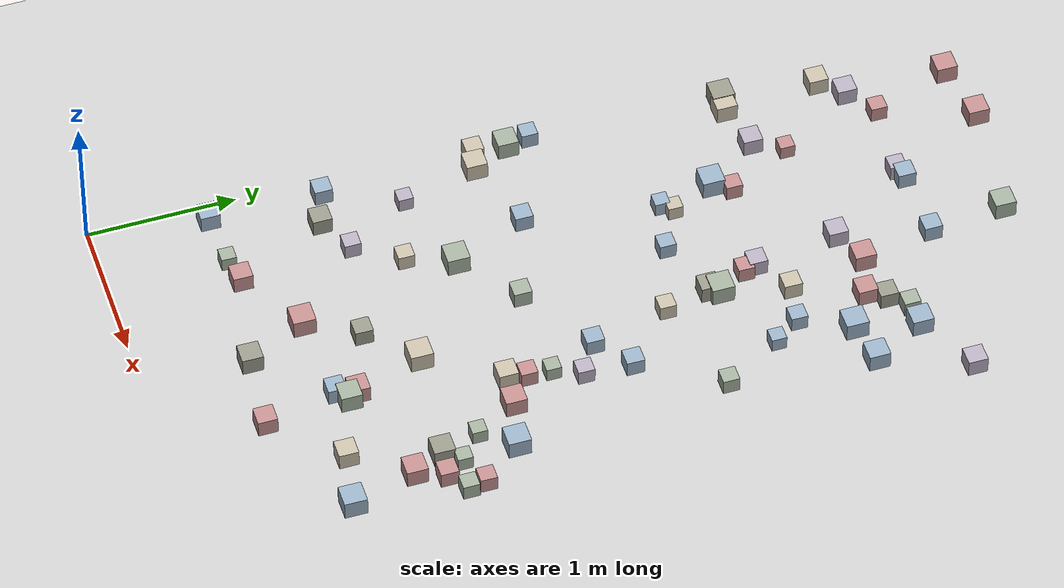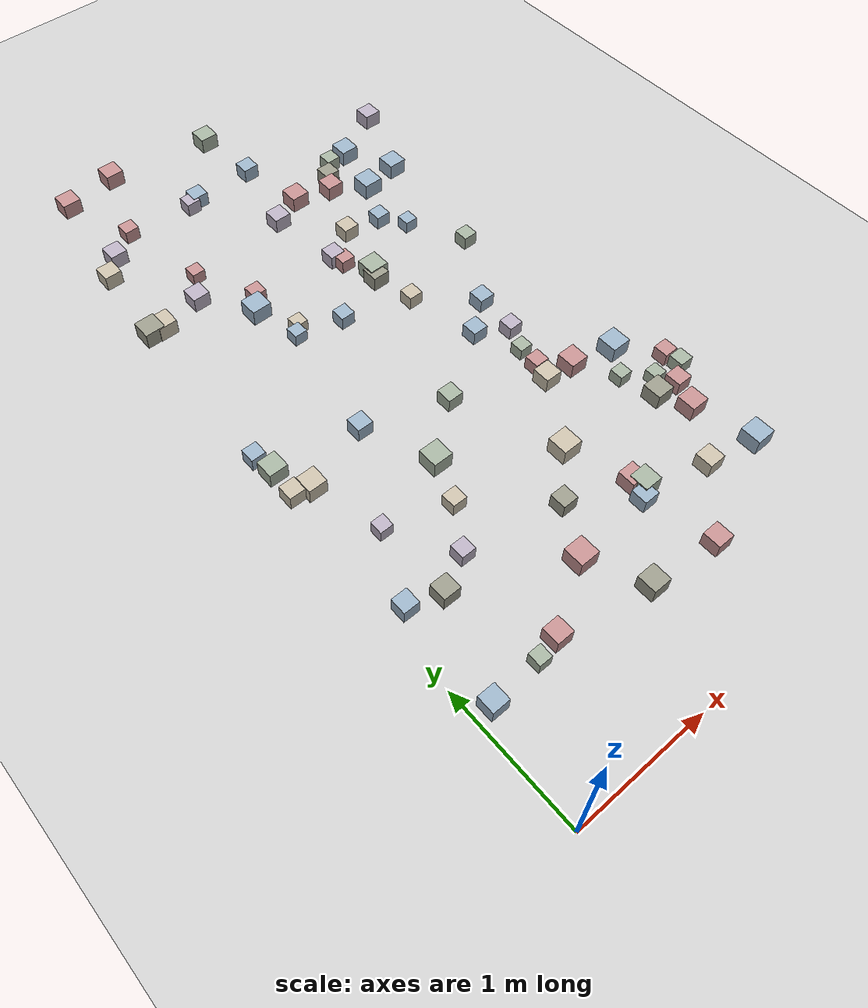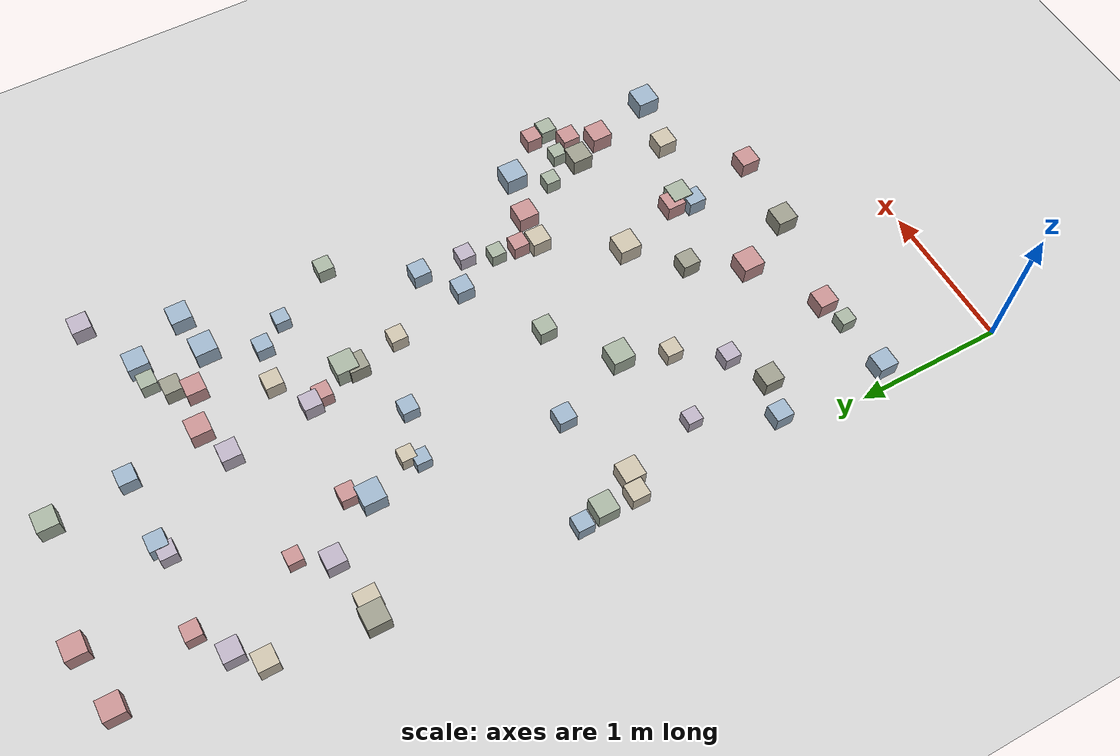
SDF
<sdf version="1.6">
 <world name="small_maze_world">
  <include><uri>model://ground_plane</uri></include>
  <include><uri>model://sun</uri></include>
  <model name="box_2">
   <static>false</static>
   <pose>2.55 1.44 0.05 0 0 0</pose>
   <link name="link">
    <inertial>
     <mass>0.2</mass>
     <inertia><ixx>0.001</ixx><iyy>0.001</iyy><izz>0.001</izz><ixy>0</ixy><ixz>0</ixz><iyz>0</iyz></inertia>
    </inertial>
    <collision name="collision"><geometry><box><size>0.14 0.14 0.14</size></box></geometry></collision>
    <visual name="visual">
     <geometry><box><size>0.14 0.14 0.14</size></box></geometry>
     <material><ambient>0.76 0.56 0.56 1</ambient><diffuse>0.76 0.56 0.56 1</diffuse></material>
    </visual>
   </link>
  </model>
  <model name="box_5">
   <static>false</static>
   <pose>1.49 4.6 0.05 0 0 0</pose>
   <link name="link">
    <inertial>
     <mass>0.2</mass>
     <inertia><ixx>0.001</ixx><iyy>0.001</iyy><izz>0.001</izz><ixy>0</ixy><ixz>0</ixz><iyz>0</iyz></inertia>
    </inertial>
    <collision name="collision"><geometry><box><size>0.13 0.13 0.13</size></box></geometry></collision>
    <visual name="visual">
     <geometry><box><size>0.13 0.13 0.13</size></box></geometry>
     <material><ambient>0.72 0.68 0.75 1</ambient><diffuse>0.72 0.68 0.75 1</diffuse></material>
    </visual>
   </link>
  </model>
  <model name="box_9">
   <static>false</static>
   <pose>0.2 4.91 0.05 0 0 0</pose>
   <link name="link">
    <inertial>
     <mass>0.2</mass>
     <inertia><ixx>0.001</ixx><iyy>0.001</iyy><izz>0.001</izz><ixy>0</ixy><ixz>0</ixz><iyz>0</iyz></inertia>
    </inertial>
    <collision name="collision"><geometry><box><size>0.13 0.13 0.13</size></box></geometry></collision>
    <visual name="visual">
     <geometry><box><size>0.13 0.13 0.13</size></box></geometry>
     <material><ambient>0.78 0.74 0.66 1</ambient><diffuse>0.78 0.74 0.66 1</diffuse></material>
    </visual>
   </link>
  </model>
  <model name="box_22">
   <static>false</static>
   <pose>2.01 2.35 0.05 0 0 0</pose>
   <link name="link">
    <inertial>
     <mass>0.2</mass>
     <inertia><ixx>0.001</ixx><iyy>0.001</iyy><izz>0.001</izz><ixy>0</ixy><ixz>0</ixz><iyz>0</iyz></inertia>
    </inertial>
    <collision name="collision"><geometry><box><size>0.11 0.11 0.11</size></box></geometry></collision>
    <visual name="visual">
     <geometry><box><size>0.11 0.11 0.11</size></box></geometry>
     <material><ambient>0.76 0.56 0.56 1</ambient><diffuse>0.76 0.56 0.56 1</diffuse></material>
    </visual>
   </link>
  </model>
  <model name="box_28">
   <static>false</static>
   <pose>1.07 5.16 0.05 0 0 0</pose>
   <link name="link">
    <inertial>
     <mass>0.2</mass>
     <inertia><ixx>0.001</ixx><iyy>0.001</iyy><izz>0.001</izz><ixy>0</ixy><ixz>0</ixz><iyz>0</iyz></inertia>
    </inertial>
    <collision name="collision"><geometry><box><size>0.11 0.11 0.11</size></box></geometry></collision>
    <visual name="visual">
     <geometry><box><size>0.11 0.11 0.11</size></box></geometry>
     <material><ambient>0.72 0.68 0.75 1</ambient><diffuse>0.72 0.68 0.75 1</diffuse></material>
    </visual>
   </link>
  </model>
  <model name="box_30">
   <static>false</static>
   <pose>0.14 4.27 0.05 0 0 0</pose>
   <link name="link">
    <inertial>
     <mass>0.2</mass>
     <inertia><ixx>0.001</ixx><iyy>0.001</iyy><izz>0.001</izz><ixy>0</ixy><ixz>0</ixz><iyz>0</iyz></inertia>
    </inertial>
    <collision name="collision"><geometry><box><size>0.15 0.15 0.15</size></box></geometry></collision>
    <visual name="visual">
     <geometry><box><size>0.15 0.15 0.15</size></box></geometry>
     <material><ambient>0.6 0.6 0.54 1</ambient><diffuse>0.6 0.6 0.54 1</diffuse></material>
    </visual>
   </link>
  </model>
  <model name="box_32">
   <static>false</static>
   <pose>0.91 3.6 0.05 0 0 0</pose>
   <link name="link">
    <inertial>
     <mass>0.2</mass>
     <inertia><ixx>0.001</ixx><iyy>0.001</iyy><izz>0.001</izz><ixy>0</ixy><ixz>0</ixz><iyz>0</iyz></inertia>
    </inertial>
    <collision name="collision"><geometry><box><size>0.1 0.1 0.1</size></box></geometry></collision>
    <visual name="visual">
     <geometry><box><size>0.1 0.1 0.1</size></box></geometry>
     <material><ambient>0.6 0.69 0.77 1</ambient><diffuse>0.6 0.69 0.77 1</diffuse></material>
    </visual>
   </link>
  </model>
  <model name="box_35">
   <static>false</static>
   <pose>2.37 1.91 0.05 0 0 0</pose>
   <link name="link">
    <inertial>
     <mass>0.2</mass>
     <inertia><ixx>0.001</ixx><iyy>0.001</iyy><izz>0.001</izz><ixy>0</ixy><ixz>0</ixz><iyz>0</iyz></inertia>
    </inertial>
    <collision name="collision"><geometry><box><size>0.1 0.1 0.1</size></box></geometry></collision>
    <visual name="visual">
     <geometry><box><size>0.1 0.1 0.1</size></box></geometry>
     <material><ambient>0.64 0.69 0.62 1</ambient><diffuse>0.64 0.69 0.62 1</diffuse></material>
    </visual>
   </link>
  </model>
  <model name="box_46">
   <static>false</static>
   <pose>0.77 5.82 0.05 0 0 0</pose>
   <link name="link">
    <inertial>
     <mass>0.2</mass>
     <inertia><ixx>0.001</ixx><iyy>0.001</iyy><izz>0.001</izz><ixy>0</ixy><ixz>0</ixz><iyz>0</iyz></inertia>
    </inertial>
    <collision name="collision"><geometry><box><size>0.14 0.14 0.14</size></box></geometry></collision>
    <visual name="visual">
     <geometry><box><size>0.14 0.14 0.14</size></box></geometry>
     <material><ambient>0.76 0.56 0.56 1</ambient><diffuse>0.76 0.56 0.56 1</diffuse></material>
    </visual>
   </link>
  </model>
  <model name="box_53">
   <static>false</static>
   <pose>1.57 4.03 0.05 0 0 0</pose>
   <link name="link">
    <inertial>
     <mass>0.2</mass>
     <inertia><ixx>0.001</ixx><iyy>0.001</iyy><izz>0.001</izz><ixy>0</ixy><ixz>0</ixz><iyz>0</iyz></inertia>
    </inertial>
    <collision name="collision"><geometry><box><size>0.12 0.12 0.12</size></box></geometry></collision>
    <visual name="visual">
     <geometry><box><size>0.12 0.12 0.12</size></box></geometry>
     <material><ambient>0.72 0.68 0.75 1</ambient><diffuse>0.72 0.68 0.75 1</diffuse></material>
    </visual>
   </link>
  </model>
  <model name="box_66">
   <static>false</static>
   <pose>0.37 2.03 0.05 0 0 0</pose>
   <link name="link">
    <inertial>
     <mass>0.2</mass>
     <inertia><ixx>0.001</ixx><iyy>0.001</iyy><izz>0.001</izz><ixy>0</ixy><ixz>0</ixz><iyz>0</iyz></inertia>
    </inertial>
    <collision name="collision"><geometry><box><size>0.1 0.1 0.1</size></box></geometry></collision>
    <visual name="visual">
     <geometry><box><size>0.1 0.1 0.1</size></box></geometry>
     <material><ambient>0.72 0.68 0.75 1</ambient><diffuse>0.72 0.68 0.75 1</diffuse></material>
    </visual>
   </link>
  </model>
  <model name="box_67">
   <static>false</static>
   <pose>2.19 4.86 0.05 0 0 0</pose>
   <link name="link">
    <inertial>
     <mass>0.2</mass>
     <inertia><ixx>0.001</ixx><iyy>0.001</iyy><izz>0.001</izz><ixy>0</ixy><ixz>0</ixz><iyz>0</iyz></inertia>
    </inertial>
    <collision name="collision"><geometry><box><size>0.11 0.11 0.11</size></box></geometry></collision>
    <visual name="visual">
     <geometry><box><size>0.11 0.11 0.11</size></box></geometry>
     <material><ambient>0.64 0.69 0.62 1</ambient><diffuse>0.64 0.69 0.62 1</diffuse></material>
    </visual>
   </link>
  </model>
  <model name="box_71">
   <static>false</static>
   <pose>2.01 4.62 0.05 0 0 0</pose>
   <link name="link">
    <inertial>
     <mass>0.2</mass>
     <inertia><ixx>0.001</ixx><iyy>0.001</iyy><izz>0.001</izz><ixy>0</ixy><ixz>0</ixz><iyz>0</iyz></inertia>
    </inertial>
    <collision name="collision"><geometry><box><size>0.13 0.13 0.13</size></box></geometry></collision>
    <visual name="visual">
     <geometry><box><size>0.13 0.13 0.13</size></box></geometry>
     <material><ambient>0.76 0.56 0.56 1</ambient><diffuse>0.76 0.56 0.56 1</diffuse></material>
    </visual>
   </link>
  </model>
  <model name="box_78">
   <static>false</static>
   <pose>1.82 4.18 0.05 0 0 0</pose>
   <link name="link">
    <inertial>
     <mass>0.2</mass>
     <inertia><ixx>0.001</ixx><iyy>0.001</iyy><izz>0.001</izz><ixy>0</ixy><ixz>0</ixz><iyz>0</iyz></inertia>
    </inertial>
    <collision name="collision"><geometry><box><size>0.12 0.12 0.12</size></box></geometry></collision>
    <visual name="visual">
     <geometry><box><size>0.12 0.12 0.12</size></box></geometry>
     <material><ambient>0.78 0.74 0.66 1</ambient><diffuse>0.78 0.74 0.66 1</diffuse></material>
    </visual>
   </link>
  </model>
  <model name="box_81">
   <static>false</static>
   <pose>2.25 4.46 0.05 0 0 0</pose>
   <link name="link">
    <inertial>
     <mass>0.2</mass>
     <inertia><ixx>0.001</ixx><iyy>0.001</iyy><izz>0.001</izz><ixy>0</ixy><ixz>0</ixz><iyz>0</iyz></inertia>
    </inertial>
    <collision name="collision"><geometry><box><size>0.15 0.15 0.15</size></box></geometry></collision>
    <visual name="visual">
     <geometry><box><size>0.15 0.15 0.15</size></box></geometry>
     <material><ambient>0.6 0.69 0.77 1</ambient><diffuse>0.6 0.69 0.77 1</diffuse></material>
    </visual>
   </link>
  </model>
  <model name="box_82">
   <static>false</static>
   <pose>1.88 0.66 0.05 0 0 0</pose>
   <link name="link">
    <inertial>
     <mass>0.2</mass>
     <inertia><ixx>0.001</ixx><iyy>0.001</iyy><izz>0.001</izz><ixy>0</ixy><ixz>0</ixz><iyz>0</iyz></inertia>
    </inertial>
    <collision name="collision"><geometry><box><size>0.13 0.13 0.13</size></box></geometry></collision>
    <visual name="visual">
     <geometry><box><size>0.13 0.13 0.13</size></box></geometry>
     <material><ambient>0.76 0.56 0.56 1</ambient><diffuse>0.76 0.56 0.56 1</diffuse></material>
    </visual>
   </link>
  </model>
  <model name="box_84">
   <static>false</static>
   <pose>1.36 2.51 0.05 0 0 0</pose>
   <link name="link">
    <inertial>
     <mass>0.2</mass>
     <inertia><ixx>0.001</ixx><iyy>0.001</iyy><izz>0.001</izz><ixy>0</ixy><ixz>0</ixz><iyz>0</iyz></inertia>
    </inertial>
    <collision name="collision"><geometry><box><size>0.12 0.12 0.12</size></box></geometry></collision>
    <visual name="visual">
     <geometry><box><size>0.12 0.12 0.12</size></box></geometry>
     <material><ambient>0.64 0.69 0.62 1</ambient><diffuse>0.64 0.69 0.62 1</diffuse></material>
    </visual>
   </link>
  </model>
  <model name="box_96">
   <static>false</static>
   <pose>0.97 3.67 0.05 0 0 0</pose>
   <link name="link">
    <inertial>
     <mass>0.2</mass>
     <inertia><ixx>0.001</ixx><iyy>0.001</iyy><izz>0.001</izz><ixy>0</ixy><ixz>0</ixz><iyz>0</iyz></inertia>
    </inertial>
    <collision name="collision"><geometry><box><size>0.1 0.1 0.1</size></box></geometry></collision>
    <visual name="visual">
     <geometry><box><size>0.1 0.1 0.1</size></box></geometry>
     <material><ambient>0.78 0.74 0.66 1</ambient><diffuse>0.78 0.74 0.66 1</diffuse></material>
    </visual>
   </link>
  </model>
  <model name="box_109">
   <static>false</static>
   <pose>0.64 1.59 0.05 0 0 0</pose>
   <link name="link">
    <inertial>
     <mass>0.2</mass>
     <inertia><ixx>0.001</ixx><iyy>0.001</iyy><izz>0.001</izz><ixy>0</ixy><ixz>0</ixz><iyz>0</iyz></inertia>
    </inertial>
    <collision name="collision"><geometry><box><size>0.11 0.11 0.11</size></box></geometry></collision>
    <visual name="visual">
     <geometry><box><size>0.11 0.11 0.11</size></box></geometry>
     <material><ambient>0.72 0.68 0.75 1</ambient><diffuse>0.72 0.68 0.75 1</diffuse></material>
    </visual>
   </link>
  </model>
  <model name="box_137">
   <static>false</static>
   <pose>1.58 5.71 0.05 0 0 0</pose>
   <link name="link">
    <inertial>
     <mass>0.2</mass>
     <inertia><ixx>0.001</ixx><iyy>0.001</iyy><izz>0.001</izz><ixy>0</ixy><ixz>0</ixz><iyz>0</iyz></inertia>
    </inertial>
    <collision name="collision"><geometry><box><size>0.14 0.14 0.14</size></box></geometry></collision>
    <visual name="visual">
     <geometry><box><size>0.14 0.14 0.14</size></box></geometry>
     <material><ambient>0.64 0.69 0.62 1</ambient><diffuse>0.64 0.69 0.62 1</diffuse></material>
    </visual>
   </link>
  </model>
  <model name="box_141">
   <static>false</static>
   <pose>2.12 3.02 0.05 0 0 0</pose>
   <link name="link">
    <inertial>
     <mass>0.2</mass>
     <inertia><ixx>0.001</ixx><iyy>0.001</iyy><izz>0.001</izz><ixy>0</ixy><ixz>0</ixz><iyz>0</iyz></inertia>
    </inertial>
    <collision name="collision"><geometry><box><size>0.12 0.12 0.12</size></box></geometry></collision>
    <visual name="visual">
     <geometry><box><size>0.12 0.12 0.12</size></box></geometry>
     <material><ambient>0.6 0.69 0.77 1</ambient><diffuse>0.6 0.69 0.77 1</diffuse></material>
    </visual>
   </link>
  </model>
  <model name="box_142">
   <static>false</static>
   <pose>2.1 2.7 0.05 0 0 0</pose>
   <link name="link">
    <inertial>
     <mass>0.2</mass>
     <inertia><ixx>0.001</ixx><iyy>0.001</iyy><izz>0.001</izz><ixy>0</ixy><ixz>0</ixz><iyz>0</iyz></inertia>
    </inertial>
    <collision name="collision"><geometry><box><size>0.11 0.11 0.11</size></box></geometry></collision>
    <visual name="visual">
     <geometry><box><size>0.11 0.11 0.11</size></box></geometry>
     <material><ambient>0.72 0.68 0.75 1</ambient><diffuse>0.72 0.68 0.75 1</diffuse></material>
    </visual>
   </link>
  </model>
  <model name="box_146">
   <static>false</static>
   <pose>2.75 1.85 0.05 0 0 0</pose>
   <link name="link">
    <inertial>
     <mass>0.2</mass>
     <inertia><ixx>0.001</ixx><iyy>0.001</iyy><izz>0.001</izz><ixy>0</ixy><ixz>0</ixz><iyz>0</iyz></inertia>
    </inertial>
    <collision name="collision"><geometry><box><size>0.11 0.11 0.11</size></box></geometry></collision>
    <visual name="visual">
     <geometry><box><size>0.11 0.11 0.11</size></box></geometry>
     <material><ambient>0.76 0.56 0.56 1</ambient><diffuse>0.76 0.56 0.56 1</diffuse></material>
    </visual>
   </link>
  </model>
  <model name="box_154">
   <static>false</static>
   <pose>1.71 3.74 0.05 0 0 0</pose>
   <link name="link">
    <inertial>
     <mass>0.2</mass>
     <inertia><ixx>0.001</ixx><iyy>0.001</iyy><izz>0.001</izz><ixy>0</ixy><ixz>0</ixz><iyz>0</iyz></inertia>
    </inertial>
    <collision name="collision"><geometry><box><size>0.15 0.15 0.15</size></box></geometry></collision>
    <visual name="visual">
     <geometry><box><size>0.15 0.15 0.15</size></box></geometry>
     <material><ambient>0.64 0.69 0.62 1</ambient><diffuse>0.64 0.69 0.62 1</diffuse></material>
    </visual>
   </link>
  </model>
  <model name="box_170">
   <static>false</static>
   <pose>1.81 1.29 0.05 0 0 0</pose>
   <link name="link">
    <inertial>
     <mass>0.2</mass>
     <inertia><ixx>0.001</ixx><iyy>0.001</iyy><izz>0.001</izz><ixy>0</ixy><ixz>0</ixz><iyz>0</iyz></inertia>
    </inertial>
    <collision name="collision"><geometry><box><size>0.13 0.13 0.13</size></box></geometry></collision>
    <visual name="visual">
     <geometry><box><size>0.13 0.13 0.13</size></box></geometry>
     <material><ambient>0.76 0.56 0.56 1</ambient><diffuse>0.76 0.56 0.56 1</diffuse></material>
    </visual>
   </link>
  </model>
  <model name="box_175">
   <static>false</static>
   <pose>2.45 1.65 0.05 0 0 0</pose>
   <link name="link">
    <inertial>
     <mass>0.2</mass>
     <inertia><ixx>0.001</ixx><iyy>0.001</iyy><izz>0.001</izz><ixy>0</ixy><ixz>0</ixz><iyz>0</iyz></inertia>
    </inertial>
    <collision name="collision"><geometry><box><size>0.14 0.14 0.14</size></box></geometry></collision>
    <visual name="visual">
     <geometry><box><size>0.14 0.14 0.14</size></box></geometry>
     <material><ambient>0.6 0.6 0.54 1</ambient><diffuse>0.6 0.6 0.54 1</diffuse></material>
    </visual>
   </link>
  </model>
  <model name="box_182">
   <static>false</static>
   <pose>2.35 4.87 0.05 0 0 0</pose>
   <link name="link">
    <inertial>
     <mass>0.2</mass>
     <inertia><ixx>0.001</ixx><iyy>0.001</iyy><izz>0.001</izz><ixy>0</ixy><ixz>0</ixz><iyz>0</iyz></inertia>
    </inertial>
    <collision name="collision"><geometry><box><size>0.14 0.14 0.14</size></box></geometry></collision>
    <visual name="visual">
     <geometry><box><size>0.14 0.14 0.14</size></box></geometry>
     <material><ambient>0.6 0.69 0.77 1</ambient><diffuse>0.6 0.69 0.77 1</diffuse></material>
    </visual>
   </link>
  </model>
  <model name="box_184">
   <static>false</static>
   <pose>1.15 5.19 0.05 0 0 0</pose>
   <link name="link">
    <inertial>
     <mass>0.2</mass>
     <inertia><ixx>0.001</ixx><iyy>0.001</iyy><izz>0.001</izz><ixy>0</ixy><ixz>0</ixz><iyz>0</iyz></inertia>
    </inertial>
    <collision name="collision"><geometry><box><size>0.12 0.12 0.12</size></box></geometry></collision>
    <visual name="visual">
     <geometry><box><size>0.12 0.12 0.12</size></box></geometry>
     <material><ambient>0.6 0.69 0.77 1</ambient><diffuse>0.6 0.69 0.77 1</diffuse></material>
    </visual>
   </link>
  </model>
  <model name="box_188">
   <static>false</static>
   <pose>2.63 1.63 0.05 0 0 0</pose>
   <link name="link">
    <inertial>
     <mass>0.2</mass>
     <inertia><ixx>0.001</ixx><iyy>0.001</iyy><izz>0.001</izz><ixy>0</ixy><ixz>0</ixz><iyz>0</iyz></inertia>
    </inertial>
    <collision name="collision"><geometry><box><size>0.12 0.12 0.12</size></box></geometry></collision>
    <visual name="visual">
     <geometry><box><size>0.12 0.12 0.12</size></box></geometry>
     <material><ambient>0.76 0.56 0.56 1</ambient><diffuse>0.76 0.56 0.56 1</diffuse></material>
    </visual>
   </link>
  </model>
  <model name="box_189">
   <static>false</static>
   <pose>2.52 2.12 0.05 0 0 0</pose>
   <link name="link">
    <inertial>
     <mass>0.2</mass>
     <inertia><ixx>0.001</ixx><iyy>0.001</iyy><izz>0.001</izz><ixy>0</ixy><ixz>0</ixz><iyz>0</iyz></inertia>
    </inertial>
    <collision name="collision"><geometry><box><size>0.15 0.15 0.15</size></box></geometry></collision>
    <visual name="visual">
     <geometry><box><size>0.15 0.15 0.15</size></box></geometry>
     <material><ambient>0.6 0.69 0.77 1</ambient><diffuse>0.6 0.69 0.77 1</diffuse></material>
    </visual>
   </link>
  </model>
  <model name="box_190">
   <static>false</static>
   <pose>1.68 3.67 0.05 0 0 0</pose>
   <link name="link">
    <inertial>
     <mass>0.2</mass>
     <inertia><ixx>0.001</ixx><iyy>0.001</iyy><izz>0.001</izz><ixy>0</ixy><ixz>0</ixz><iyz>0</iyz></inertia>
    </inertial>
    <collision name="collision"><geometry><box><size>0.13 0.13 0.13</size></box></geometry></collision>
    <visual name="visual">
     <geometry><box><size>0.13 0.13 0.13</size></box></geometry>
     <material><ambient>0.6 0.6 0.54 1</ambient><diffuse>0.6 0.6 0.54 1</diffuse></material>
    </visual>
   </link>
  </model>
  <model name="box_191">
   <static>false</static>
   <pose>0.84 1.89 0.05 0 0 0</pose>
   <link name="link">
    <inertial>
     <mass>0.2</mass>
     <inertia><ixx>0.001</ixx><iyy>0.001</iyy><izz>0.001</izz><ixy>0</ixy><ixz>0</ixz><iyz>0</iyz></inertia>
    </inertial>
    <collision name="collision"><geometry><box><size>0.11 0.11 0.11</size></box></geometry></collision>
    <visual name="visual">
     <geometry><box><size>0.11 0.11 0.11</size></box></geometry>
     <material><ambient>0.78 0.74 0.66 1</ambient><diffuse>0.78 0.74 0.66 1</diffuse></material>
    </visual>
   </link>
  </model>
  <model name="box_197">
   <static>false</static>
   <pose>0.83 3.97 0.05 0 0 0</pose>
   <link name="link">
    <inertial>
     <mass>0.2</mass>
     <inertia><ixx>0.001</ixx><iyy>0.001</iyy><izz>0.001</izz><ixy>0</ixy><ixz>0</ixz><iyz>0</iyz></inertia>
    </inertial>
    <collision name="collision"><geometry><box><size>0.15 0.15 0.15</size></box></geometry></collision>
    <visual name="visual">
     <geometry><box><size>0.15 0.15 0.15</size></box></geometry>
     <material><ambient>0.6 0.69 0.77 1</ambient><diffuse>0.6 0.69 0.77 1</diffuse></material>
    </visual>
   </link>
  </model>
  <model name="box_200">
   <static>false</static>
   <pose>2.45 3.55 0.05 0 0 0</pose>
   <link name="link">
    <inertial>
     <mass>0.2</mass>
     <inertia><ixx>0.001</ixx><iyy>0.001</iyy><izz>0.001</izz><ixy>0</ixy><ixz>0</ixz><iyz>0</iyz></inertia>
    </inertial>
    <collision name="collision"><geometry><box><size>0.11 0.11 0.11</size></box></geometry></collision>
    <visual name="visual">
     <geometry><box><size>0.11 0.11 0.11</size></box></geometry>
     <material><ambient>0.64 0.69 0.62 1</ambient><diffuse>0.64 0.69 0.62 1</diffuse></material>
    </visual>
   </link>
  </model>
  <model name="box_202">
   <static>false</static>
   <pose>1.36 0.71 0.05 0 0 0</pose>
   <link name="link">
    <inertial>
     <mass>0.2</mass>
     <inertia><ixx>0.001</ixx><iyy>0.001</iyy><izz>0.001</izz><ixy>0</ixy><ixz>0</ixz><iyz>0</iyz></inertia>
    </inertial>
    <collision name="collision"><geometry><box><size>0.14 0.14 0.14</size></box></geometry></collision>
    <visual name="visual">
     <geometry><box><size>0.14 0.14 0.14</size></box></geometry>
     <material><ambient>0.6 0.6 0.54 1</ambient><diffuse>0.6 0.6 0.54 1</diffuse></material>
    </visual>
   </link>
  </model>
  <model name="box_211">
   <static>false</static>
   <pose>0.14 1.54 0.05 0 0 0</pose>
   <link name="link">
    <inertial>
     <mass>0.2</mass>
     <inertia><ixx>0.001</ixx><iyy>0.001</iyy><izz>0.001</izz><ixy>0</ixy><ixz>0</ixz><iyz>0</iyz></inertia>
    </inertial>
    <collision name="collision"><geometry><box><size>0.12 0.12 0.12</size></box></geometry></collision>
    <visual name="visual">
     <geometry><box><size>0.12 0.12 0.12</size></box></geometry>
     <material><ambient>0.6 0.69 0.77 1</ambient><diffuse>0.6 0.69 0.77 1</diffuse></material>
    </visual>
   </link>
  </model>
  <model name="box_213">
   <static>false</static>
   <pose>1.77 1.15 0.05 0 0 0</pose>
   <link name="link">
    <inertial>
     <mass>0.2</mass>
     <inertia><ixx>0.001</ixx><iyy>0.001</iyy><izz>0.001</izz><ixy>0</ixy><ixz>0</ixz><iyz>0</iyz></inertia>
    </inertial>
    <collision name="collision"><geometry><box><size>0.12 0.12 0.12</size></box></geometry></collision>
    <visual name="visual">
     <geometry><box><size>0.12 0.12 0.12</size></box></geometry>
     <material><ambient>0.6 0.69 0.77 1</ambient><diffuse>0.6 0.69 0.77 1</diffuse></material>
    </visual>
   </link>
  </model>
  <model name="box_215">
   <static>false</static>
   <pose>0.57 4.33 0.05 0 0 0</pose>
   <link name="link">
    <inertial>
     <mass>0.2</mass>
     <inertia><ixx>0.001</ixx><iyy>0.001</iyy><izz>0.001</izz><ixy>0</ixy><ixz>0</ixz><iyz>0</iyz></inertia>
    </inertial>
    <collision name="collision"><geometry><box><size>0.13 0.13 0.13</size></box></geometry></collision>
    <visual name="visual">
     <geometry><box><size>0.13 0.13 0.13</size></box></geometry>
     <material><ambient>0.72 0.68 0.75 1</ambient><diffuse>0.72 0.68 0.75 1</diffuse></material>
    </visual>
   </link>
  </model>
  <model name="box_231">
   <static>false</static>
   <pose>2.2 2.2 0.05 0 0 0</pose>
   <link name="link">
    <inertial>
     <mass>0.2</mass>
     <inertia><ixx>0.001</ixx><iyy>0.001</iyy><izz>0.001</izz><ixy>0</ixy><ixz>0</ixz><iyz>0</iyz></inertia>
    </inertial>
    <collision name="collision"><geometry><box><size>0.14 0.14 0.14</size></box></geometry></collision>
    <visual name="visual">
     <geometry><box><size>0.14 0.14 0.14</size></box></geometry>
     <material><ambient>0.76 0.56 0.56 1</ambient><diffuse>0.76 0.56 0.56 1</diffuse></material>
    </visual>
   </link>
  </model>
  <model name="box_233">
   <static>false</static>
   <pose>2.77 1.73 0.05 0 0 0</pose>
   <link name="link">
    <inertial>
     <mass>0.2</mass>
     <inertia><ixx>0.001</ixx><iyy>0.001</iyy><izz>0.001</izz><ixy>0</ixy><ixz>0</ixz><iyz>0</iyz></inertia>
    </inertial>
    <collision name="collision"><geometry><box><size>0.11 0.11 0.11</size></box></geometry></collision>
    <visual name="visual">
     <geometry><box><size>0.11 0.11 0.11</size></box></geometry>
     <material><ambient>0.64 0.69 0.62 1</ambient><diffuse>0.64 0.69 0.62 1</diffuse></material>
    </visual>
   </link>
  </model>
  <model name="box_238">
   <static>false</static>
   <pose>0.55 5.21 0.05 0 0 0</pose>
   <link name="link">
    <inertial>
     <mass>0.2</mass>
     <inertia><ixx>0.001</ixx><iyy>0.001</iyy><izz>0.001</izz><ixy>0</ixy><ixz>0</ixz><iyz>0</iyz></inertia>
    </inertial>
    <collision name="collision"><geometry><box><size>0.11 0.11 0.11</size></box></geometry></collision>
    <visual name="visual">
     <geometry><box><size>0.11 0.11 0.11</size></box></geometry>
     <material><ambient>0.76 0.56 0.56 1</ambient><diffuse>0.76 0.56 0.56 1</diffuse></material>
    </visual>
   </link>
  </model>
  <model name="box_239">
   <static>false</static>
   <pose>1.85 1.22 0.05 0 0 0</pose>
   <link name="link">
    <inertial>
     <mass>0.2</mass>
     <inertia><ixx>0.001</ixx><iyy>0.001</iyy><izz>0.001</izz><ixy>0</ixy><ixz>0</ixz><iyz>0</iyz></inertia>
    </inertial>
    <collision name="collision"><geometry><box><size>0.14 0.14 0.14</size></box></geometry></collision>
    <visual name="visual">
     <geometry><box><size>0.14 0.14 0.14</size></box></geometry>
     <material><ambient>0.64 0.69 0.62 1</ambient><diffuse>0.64 0.69 0.62 1</diffuse></material>
    </visual>
   </link>
  </model>
  <model name="box_241">
   <static>false</static>
   <pose>2.55 1.76 0.05 0 0 0</pose>
   <link name="link">
    <inertial>
     <mass>0.2</mass>
     <inertia><ixx>0.001</ixx><iyy>0.001</iyy><izz>0.001</izz><ixy>0</ixy><ixz>0</ixz><iyz>0</iyz></inertia>
    </inertial>
    <collision name="collision"><geometry><box><size>0.1 0.1 0.1</size></box></geometry></collision>
    <visual name="visual">
     <geometry><box><size>0.1 0.1 0.1</size></box></geometry>
     <material><ambient>0.64 0.69 0.62 1</ambient><diffuse>0.64 0.69 0.62 1</diffuse></material>
    </visual>
   </link>
  </model>
  <model name="box_265">
   <static>false</static>
   <pose>0.75 2.71 0.05 0 0 0</pose>
   <link name="link">
    <inertial>
     <mass>0.2</mass>
     <inertia><ixx>0.001</ixx><iyy>0.001</iyy><izz>0.001</izz><ixy>0</ixy><ixz>0</ixz><iyz>0</iyz></inertia>
    </inertial>
    <collision name="collision"><geometry><box><size>0.12 0.12 0.12</size></box></geometry></collision>
    <visual name="visual">
     <geometry><box><size>0.12 0.12 0.12</size></box></geometry>
     <material><ambient>0.6 0.69 0.77 1</ambient><diffuse>0.6 0.69 0.77 1</diffuse></material>
    </visual>
   </link>
  </model>
  <model name="box_269">
   <static>false</static>
   <pose>2.02 2.51 0.05 0 0 0</pose>
   <link name="link">
    <inertial>
     <mass>0.2</mass>
     <inertia><ixx>0.001</ixx><iyy>0.001</iyy><izz>0.001</izz><ixy>0</ixy><ixz>0</ixz><iyz>0</iyz></inertia>
    </inertial>
    <collision name="collision"><geometry><box><size>0.1 0.1 0.1</size></box></geometry></collision>
    <visual name="visual">
     <geometry><box><size>0.1 0.1 0.1</size></box></geometry>
     <material><ambient>0.64 0.69 0.62 1</ambient><diffuse>0.64 0.69 0.62 1</diffuse></material>
    </visual>
   </link>
  </model>
  <model name="box_271">
   <static>false</static>
   <pose>1.98 2.22 0.05 0 0 0</pose>
   <link name="link">
    <inertial>
     <mass>0.2</mass>
     <inertia><ixx>0.001</ixx><iyy>0.001</iyy><izz>0.001</izz><ixy>0</ixy><ixz>0</ixz><iyz>0</iyz></inertia>
    </inertial>
    <collision name="collision"><geometry><box><size>0.13 0.13 0.13</size></box></geometry></collision>
    <visual name="visual">
     <geometry><box><size>0.13 0.13 0.13</size></box></geometry>
     <material><ambient>0.78 0.74 0.66 1</ambient><diffuse>0.78 0.74 0.66 1</diffuse></material>
    </visual>
   </link>
  </model>
  <model name="box_284">
   <static>false</static>
   <pose>2.09 4.13 0.05 0 0 0</pose>
   <link name="link">
    <inertial>
     <mass>0.2</mass>
     <inertia><ixx>0.001</ixx><iyy>0.001</iyy><izz>0.001</izz><ixy>0</ixy><ixz>0</ixz><iyz>0</iyz></inertia>
    </inertial>
    <collision name="collision"><geometry><box><size>0.11 0.11 0.11</size></box></geometry></collision>
    <visual name="visual">
     <geometry><box><size>0.11 0.11 0.11</size></box></geometry>
     <material><ambient>0.6 0.69 0.77 1</ambient><diffuse>0.6 0.69 0.77 1</diffuse></material>
    </visual>
   </link>
  </model>
  <model name="box_285">
   <static>false</static>
   <pose>1.36 1.45 0.05 0 0 0</pose>
   <link name="link">
    <inertial>
     <mass>0.2</mass>
     <inertia><ixx>0.001</ixx><iyy>0.001</iyy><izz>0.001</izz><ixy>0</ixy><ixz>0</ixz><iyz>0</iyz></inertia>
    </inertial>
    <collision name="collision"><geometry><box><size>0.12 0.12 0.12</size></box></geometry></collision>
    <visual name="visual">
     <geometry><box><size>0.12 0.12 0.12</size></box></geometry>
     <material><ambient>0.6 0.6 0.54 1</ambient><diffuse>0.6 0.6 0.54 1</diffuse></material>
    </visual>
   </link>
  </model>
  <model name="box_290">
   <static>false</static>
   <pose>1.16 1.11 0.05 0 0 0</pose>
   <link name="link">
    <inertial>
     <mass>0.2</mass>
     <inertia><ixx>0.001</ixx><iyy>0.001</iyy><izz>0.001</izz><ixy>0</ixy><ixz>0</ixz><iyz>0</iyz></inertia>
    </inertial>
    <collision name="collision"><geometry><box><size>0.15 0.15 0.15</size></box></geometry></collision>
    <visual name="visual">
     <geometry><box><size>0.15 0.15 0.15</size></box></geometry>
     <material><ambient>0.76 0.56 0.56 1</ambient><diffuse>0.76 0.56 0.56 1</diffuse></material>
    </visual>
   </link>
  </model>
  <model name="box_299">
   <static>false</static>
   <pose>2.08 4.74 0.05 0 0 0</pose>
   <link name="link">
    <inertial>
     <mass>0.2</mass>
     <inertia><ixx>0.001</ixx><iyy>0.001</iyy><izz>0.001</izz><ixy>0</ixy><ixz>0</ixz><iyz>0</iyz></inertia>
    </inertial>
    <collision name="collision"><geometry><box><size>0.12 0.12 0.12</size></box></geometry></collision>
    <visual name="visual">
     <geometry><box><size>0.12 0.12 0.12</size></box></geometry>
     <material><ambient>0.6 0.6 0.54 1</ambient><diffuse>0.6 0.6 0.54 1</diffuse></material>
    </visual>
   </link>
  </model>
  <model name="box_307">
   <static>false</static>
   <pose>0.69 4.53 0.05 0 0 0</pose>
   <link name="link">
    <inertial>
     <mass>0.2</mass>
     <inertia><ixx>0.001</ixx><iyy>0.001</iyy><izz>0.001</izz><ixy>0</ixy><ixz>0</ixz><iyz>0</iyz></inertia>
    </inertial>
    <collision name="collision"><geometry><box><size>0.1 0.1 0.1</size></box></geometry></collision>
    <visual name="visual">
     <geometry><box><size>0.1 0.1 0.1</size></box></geometry>
     <material><ambient>0.76 0.56 0.56 1</ambient><diffuse>0.76 0.56 0.56 1</diffuse></material>
    </visual>
   </link>
  </model>
  <model name="box_315">
   <static>false</static>
   <pose>0.1 2.58 0.05 0 0 0</pose>
   <link name="link">
    <inertial>
     <mass>0.2</mass>
     <inertia><ixx>0.001</ixx><iyy>0.001</iyy><izz>0.001</izz><ixy>0</ixy><ixz>0</ixz><iyz>0</iyz></inertia>
    </inertial>
    <collision name="collision"><geometry><box><size>0.12 0.12 0.12</size></box></geometry></collision>
    <visual name="visual">
     <geometry><box><size>0.12 0.12 0.12</size></box></geometry>
     <material><ambient>0.78 0.74 0.66 1</ambient><diffuse>0.78 0.74 0.66 1</diffuse></material>
    </visual>
   </link>
  </model>
  <model name="box_324">
   <static>false</static>
   <pose>2.22 3.95 0.05 0 0 0</pose>
   <link name="link">
    <inertial>
     <mass>0.2</mass>
     <inertia><ixx>0.001</ixx><iyy>0.001</iyy><izz>0.001</izz><ixy>0</ixy><ixz>0</ixz><iyz>0</iyz></inertia>
    </inertial>
    <collision name="collision"><geometry><box><size>0.1 0.1 0.1</size></box></geometry></collision>
    <visual name="visual">
     <geometry><box><size>0.1 0.1 0.1</size></box></geometry>
     <material><ambient>0.6 0.69 0.77 1</ambient><diffuse>0.6 0.69 0.77 1</diffuse></material>
    </visual>
   </link>
  </model>
  <model name="box_332">
   <static>false</static>
   <pose>1.73 4.7 0.05 0 0 0</pose>
   <link name="link">
    <inertial>
     <mass>0.2</mass>
     <inertia><ixx>0.001</ixx><iyy>0.001</iyy><izz>0.001</izz><ixy>0</ixy><ixz>0</ixz><iyz>0</iyz></inertia>
    </inertial>
    <collision name="collision"><geometry><box><size>0.14 0.14 0.14</size></box></geometry></collision>
    <visual name="visual">
     <geometry><box><size>0.14 0.14 0.14</size></box></geometry>
     <material><ambient>0.76 0.56 0.56 1</ambient><diffuse>0.76 0.56 0.56 1</diffuse></material>
    </visual>
   </link>
  </model>
  <model name="box_346">
   <static>false</static>
   <pose>0.34 5.06 0.05 0 0 0</pose>
   <link name="link">
    <inertial>
     <mass>0.2</mass>
     <inertia><ixx>0.001</ixx><iyy>0.001</iyy><izz>0.001</izz><ixy>0</ixy><ixz>0</ixz><iyz>0</iyz></inertia>
    </inertial>
    <collision name="collision"><geometry><box><size>0.13 0.13 0.13</size></box></geometry></collision>
    <visual name="visual">
     <geometry><box><size>0.13 0.13 0.13</size></box></geometry>
     <material><ambient>0.72 0.68 0.75 1</ambient><diffuse>0.72 0.68 0.75 1</diffuse></material>
    </visual>
   </link>
  </model>
  <model name="box_355">
   <static>false</static>
   <pose>1.63 5.2 0.05 0 0 0</pose>
   <link name="link">
    <inertial>
     <mass>0.2</mass>
     <inertia><ixx>0.001</ixx><iyy>0.001</iyy><izz>0.001</izz><ixy>0</ixy><ixz>0</ixz><iyz>0</iyz></inertia>
    </inertial>
    <collision name="collision"><geometry><box><size>0.12 0.12 0.12</size></box></geometry></collision>
    <visual name="visual">
     <geometry><box><size>0.12 0.12 0.12</size></box></geometry>
     <material><ambient>0.6 0.69 0.77 1</ambient><diffuse>0.6 0.69 0.77 1</diffuse></material>
    </visual>
   </link>
  </model>
  <model name="box_356">
   <static>false</static>
   <pose>2.67 1.0 0.05 0 0 0</pose>
   <link name="link">
    <inertial>
     <mass>0.2</mass>
     <inertia><ixx>0.001</ixx><iyy>0.001</iyy><izz>0.001</izz><ixy>0</ixy><ixz>0</ixz><iyz>0</iyz></inertia>
    </inertial>
    <collision name="collision"><geometry><box><size>0.15 0.15 0.15</size></box></geometry></collision>
    <visual name="visual">
     <geometry><box><size>0.15 0.15 0.15</size></box></geometry>
     <material><ambient>0.6 0.69 0.77 1</ambient><diffuse>0.6 0.69 0.77 1</diffuse></material>
    </visual>
   </link>
  </model>
  <model name="box_359">
   <static>false</static>
   <pose>0.13 0.78 0.05 0 0 0</pose>
   <link name="link">
    <inertial>
     <mass>0.2</mass>
     <inertia><ixx>0.001</ixx><iyy>0.001</iyy><izz>0.001</izz><ixy>0</ixy><ixz>0</ixz><iyz>0</iyz></inertia>
    </inertial>
    <collision name="collision"><geometry><box><size>0.13 0.13 0.13</size></box></geometry></collision>
    <visual name="visual">
     <geometry><box><size>0.13 0.13 0.13</size></box></geometry>
     <material><ambient>0.6 0.69 0.77 1</ambient><diffuse>0.6 0.69 0.77 1</diffuse></material>
    </visual>
   </link>
  </model>
  <model name="box_360">
   <static>false</static>
   <pose>2.54 4.51 0.05 0 0 0</pose>
   <link name="link">
    <inertial>
     <mass>0.2</mass>
     <inertia><ixx>0.001</ixx><iyy>0.001</iyy><izz>0.001</izz><ixy>0</ixy><ixz>0</ixz><iyz>0</iyz></inertia>
    </inertial>
    <collision name="collision"><geometry><box><size>0.14 0.14 0.14</size></box></geometry></collision>
    <visual name="visual">
     <geometry><box><size>0.14 0.14 0.14</size></box></geometry>
     <material><ambient>0.6 0.69 0.77 1</ambient><diffuse>0.6 0.69 0.77 1</diffuse></material>
    </visual>
   </link>
  </model>
  <model name="box_369">
   <static>false</static>
   <pose>1.6 3.94 0.05 0 0 0</pose>
   <link name="link">
    <inertial>
     <mass>0.2</mass>
     <inertia><ixx>0.001</ixx><iyy>0.001</iyy><izz>0.001</izz><ixy>0</ixy><ixz>0</ixz><iyz>0</iyz></inertia>
    </inertial>
    <collision name="collision"><geometry><box><size>0.11 0.11 0.11</size></box></geometry></collision>
    <visual name="visual">
     <geometry><box><size>0.11 0.11 0.11</size></box></geometry>
     <material><ambient>0.76 0.56 0.56 1</ambient><diffuse>0.76 0.56 0.56 1</diffuse></material>
    </visual>
   </link>
  </model>
  <model name="box_370">
   <static>false</static>
   <pose>0.08 2.96 0.05 0 0 0</pose>
   <link name="link">
    <inertial>
     <mass>0.2</mass>
     <inertia><ixx>0.001</ixx><iyy>0.001</iyy><izz>0.001</izz><ixy>0</ixy><ixz>0</ixz><iyz>0</iyz></inertia>
    </inertial>
    <collision name="collision"><geometry><box><size>0.11 0.11 0.11</size></box></geometry></collision>
    <visual name="visual">
     <geometry><box><size>0.11 0.11 0.11</size></box></geometry>
     <material><ambient>0.6 0.69 0.77 1</ambient><diffuse>0.6 0.69 0.77 1</diffuse></material>
    </visual>
   </link>
  </model>
  <model name="box_372">
   <static>false</static>
   <pose>0.38 1.46 0.05 0 0 0</pose>
   <link name="link">
    <inertial>
     <mass>0.2</mass>
     <inertia><ixx>0.001</ixx><iyy>0.001</iyy><izz>0.001</izz><ixy>0</ixy><ixz>0</ixz><iyz>0</iyz></inertia>
    </inertial>
    <collision name="collision"><geometry><box><size>0.13 0.13 0.13</size></box></geometry></collision>
    <visual name="visual">
     <geometry><box><size>0.13 0.13 0.13</size></box></geometry>
     <material><ambient>0.6 0.6 0.54 1</ambient><diffuse>0.6 0.6 0.54 1</diffuse></material>
    </visual>
   </link>
  </model>
  <model name="box_378">
   <static>false</static>
   <pose>1.75 3.36 0.05 0 0 0</pose>
   <link name="link">
    <inertial>
     <mass>0.2</mass>
     <inertia><ixx>0.001</ixx><iyy>0.001</iyy><izz>0.001</izz><ixy>0</ixy><ixz>0</ixz><iyz>0</iyz></inertia>
    </inertial>
    <collision name="collision"><geometry><box><size>0.11 0.11 0.11</size></box></geometry></collision>
    <visual name="visual">
     <geometry><box><size>0.11 0.11 0.11</size></box></geometry>
     <material><ambient>0.78 0.74 0.66 1</ambient><diffuse>0.78 0.74 0.66 1</diffuse></material>
    </visual>
   </link>
  </model>
  <model name="box_379">
   <static>false</static>
   <pose>2.77 5.09 0.05 0 0 0</pose>
   <link name="link">
    <inertial>
     <mass>0.2</mass>
     <inertia><ixx>0.001</ixx><iyy>0.001</iyy><izz>0.001</izz><ixy>0</ixy><ixz>0</ixz><iyz>0</iyz></inertia>
    </inertial>
    <collision name="collision"><geometry><box><size>0.13 0.13 0.13</size></box></geometry></collision>
    <visual name="visual">
     <geometry><box><size>0.13 0.13 0.13</size></box></geometry>
     <material><ambient>0.72 0.68 0.75 1</ambient><diffuse>0.72 0.68 0.75 1</diffuse></material>
    </visual>
   </link>
  </model>
  <model name="box_397">
   <static>false</static>
   <pose>2.29 1.07 0.05 0 0 0</pose>
   <link name="link">
    <inertial>
     <mass>0.2</mass>
     <inertia><ixx>0.001</ixx><iyy>0.001</iyy><izz>0.001</izz><ixy>0</ixy><ixz>0</ixz><iyz>0</iyz></inertia>
    </inertial>
    <collision name="collision"><geometry><box><size>0.13 0.13 0.13</size></box></geometry></collision>
    <visual name="visual">
     <geometry><box><size>0.13 0.13 0.13</size></box></geometry>
     <material><ambient>0.78 0.74 0.66 1</ambient><diffuse>0.78 0.74 0.66 1</diffuse></material>
    </visual>
   </link>
  </model>
  <model name="box_399">
   <static>false</static>
   <pose>0.51 0.8 0.05 0 0 0</pose>
   <link name="link">
    <inertial>
     <mass>0.2</mass>
     <inertia><ixx>0.001</ixx><iyy>0.001</iyy><izz>0.001</izz><ixy>0</ixy><ixz>0</ixz><iyz>0</iyz></inertia>
    </inertial>
    <collision name="collision"><geometry><box><size>0.1 0.1 0.1</size></box></geometry></collision>
    <visual name="visual">
     <geometry><box><size>0.1 0.1 0.1</size></box></geometry>
     <material><ambient>0.64 0.69 0.62 1</ambient><diffuse>0.64 0.69 0.62 1</diffuse></material>
    </visual>
   </link>
  </model>
  <model name="box_404">
   <static>false</static>
   <pose>0.11 2.8 0.05 0 0 0</pose>
   <link name="link">
    <inertial>
     <mass>0.2</mass>
     <inertia><ixx>0.001</ixx><iyy>0.001</iyy><izz>0.001</izz><ixy>0</ixy><ixz>0</ixz><iyz>0</iyz></inertia>
    </inertial>
    <collision name="collision"><geometry><box><size>0.14 0.14 0.14</size></box></geometry></collision>
    <visual name="visual">
     <geometry><box><size>0.14 0.14 0.14</size></box></geometry>
     <material><ambient>0.64 0.69 0.62 1</ambient><diffuse>0.64 0.69 0.62 1</diffuse></material>
    </visual>
   </link>
  </model>
  <model name="box_416">
   <static>false</static>
   <pose>0.91 4.09 0.05 0 0 0</pose>
   <link name="link">
    <inertial>
     <mass>0.2</mass>
     <inertia><ixx>0.001</ixx><iyy>0.001</iyy><izz>0.001</izz><ixy>0</ixy><ixz>0</ixz><iyz>0</iyz></inertia>
    </inertial>
    <collision name="collision"><geometry><box><size>0.11 0.11 0.11</size></box></geometry></collision>
    <visual name="visual">
     <geometry><box><size>0.11 0.11 0.11</size></box></geometry>
     <material><ambient>0.76 0.56 0.56 1</ambient><diffuse>0.76 0.56 0.56 1</diffuse></material>
    </visual>
   </link>
  </model>
  <model name="box_418">
   <static>false</static>
   <pose>1.26 3.52 0.05 0 0 0</pose>
   <link name="link">
    <inertial>
     <mass>0.2</mass>
     <inertia><ixx>0.001</ixx><iyy>0.001</iyy><izz>0.001</izz><ixy>0</ixy><ixz>0</ixz><iyz>0</iyz></inertia>
    </inertial>
    <collision name="collision"><geometry><box><size>0.11 0.11 0.11</size></box></geometry></collision>
    <visual name="visual">
     <geometry><box><size>0.11 0.11 0.11</size></box></geometry>
     <material><ambient>0.6 0.69 0.77 1</ambient><diffuse>0.6 0.69 0.77 1</diffuse></material>
    </visual>
   </link>
  </model>
  <model name="box_422">
   <static>false</static>
   <pose>0.23 2.55 0.05 0 0 0</pose>
   <link name="link">
    <inertial>
     <mass>0.2</mass>
     <inertia><ixx>0.001</ixx><iyy>0.001</iyy><izz>0.001</izz><ixy>0</ixy><ixz>0</ixz><iyz>0</iyz></inertia>
    </inertial>
    <collision name="collision"><geometry><box><size>0.14 0.14 0.14</size></box></geometry></collision>
    <visual name="visual">
     <geometry><box><size>0.14 0.14 0.14</size></box></geometry>
     <material><ambient>0.78 0.74 0.66 1</ambient><diffuse>0.78 0.74 0.66 1</diffuse></material>
    </visual>
   </link>
  </model>
  <model name="box_425">
   <static>false</static>
   <pose>1.88 2.83 0.05 0 0 0</pose>
   <link name="link">
    <inertial>
     <mass>0.2</mass>
     <inertia><ixx>0.001</ixx><iyy>0.001</iyy><izz>0.001</izz><ixy>0</ixy><ixz>0</ixz><iyz>0</iyz></inertia>
    </inertial>
    <collision name="collision"><geometry><box><size>0.12 0.12 0.12</size></box></geometry></collision>
    <visual name="visual">
     <geometry><box><size>0.12 0.12 0.12</size></box></geometry>
     <material><ambient>0.6 0.69 0.77 1</ambient><diffuse>0.6 0.69 0.77 1</diffuse></material>
    </visual>
   </link>
  </model>
  <model name="box_429">
   <static>false</static>
   <pose>0.35 5.75 0.05 0 0 0</pose>
   <link name="link">
    <inertial>
     <mass>0.2</mass>
     <inertia><ixx>0.001</ixx><iyy>0.001</iyy><izz>0.001</izz><ixy>0</ixy><ixz>0</ixz><iyz>0</iyz></inertia>
    </inertial>
    <collision name="collision"><geometry><box><size>0.14 0.14 0.14</size></box></geometry></collision>
    <visual name="visual">
     <geometry><box><size>0.14 0.14 0.14</size></box></geometry>
     <material><ambient>0.76 0.56 0.56 1</ambient><diffuse>0.76 0.56 0.56 1</diffuse></material>
    </visual>
   </link>
  </model>
  <model name="box_431">
   <static>false</static>
   <pose>0.24 4.26 0.05 0 0 0</pose>
   <link name="link">
    <inertial>
     <mass>0.2</mass>
     <inertia><ixx>0.001</ixx><iyy>0.001</iyy><izz>0.001</izz><ixy>0</ixy><ixz>0</ixz><iyz>0</iyz></inertia>
    </inertial>
    <collision name="collision"><geometry><box><size>0.14 0.14 0.14</size></box></geometry></collision>
    <visual name="visual">
     <geometry><box><size>0.14 0.14 0.14</size></box></geometry>
     <material><ambient>0.78 0.74 0.66 1</ambient><diffuse>0.78 0.74 0.66 1</diffuse></material>
    </visual>
   </link>
  </model>
  <model name="box_437">
   <static>false</static>
   <pose>0.96 2.2 0.05 0 0 0</pose>
   <link name="link">
    <inertial>
     <mass>0.2</mass>
     <inertia><ixx>0.001</ixx><iyy>0.001</iyy><izz>0.001</izz><ixy>0</ixy><ixz>0</ixz><iyz>0</iyz></inertia>
    </inertial>
    <collision name="collision"><geometry><box><size>0.15 0.15 0.15</size></box></geometry></collision>
    <visual name="visual">
     <geometry><box><size>0.15 0.15 0.15</size></box></geometry>
     <material><ambient>0.64 0.69 0.62 1</ambient><diffuse>0.64 0.69 0.62 1</diffuse></material>
    </visual>
   </link>
  </model>
  <model name="box_438">
   <static>false</static>
   <pose>0.69 0.84 0.05 0 0 0</pose>
   <link name="link">
    <inertial>
     <mass>0.2</mass>
     <inertia><ixx>0.001</ixx><iyy>0.001</iyy><izz>0.001</izz><ixy>0</ixy><ixz>0</ixz><iyz>0</iyz></inertia>
    </inertial>
    <collision name="collision"><geometry><box><size>0.13 0.13 0.13</size></box></geometry></collision>
    <visual name="visual">
     <geometry><box><size>0.13 0.13 0.13</size></box></geometry>
     <material><ambient>0.76 0.56 0.56 1</ambient><diffuse>0.76 0.56 0.56 1</diffuse></material>
    </visual>
   </link>
  </model>
  <model name="box_443">
   <static>false</static>
   <pose>1.66 1.74 0.05 0 0 0</pose>
   <link name="link">
    <inertial>
     <mass>0.2</mass>
     <inertia><ixx>0.001</ixx><iyy>0.001</iyy><izz>0.001</izz><ixy>0</ixy><ixz>0</ixz><iyz>0</iyz></inertia>
    </inertial>
    <collision name="collision"><geometry><box><size>0.15 0.15 0.15</size></box></geometry></collision>
    <visual name="visual">
     <geometry><box><size>0.15 0.15 0.15</size></box></geometry>
     <material><ambient>0.78 0.74 0.66 1</ambient><diffuse>0.78 0.74 0.66 1</diffuse></material>
    </visual>
   </link>
  </model>
 </world>
</sdf>
